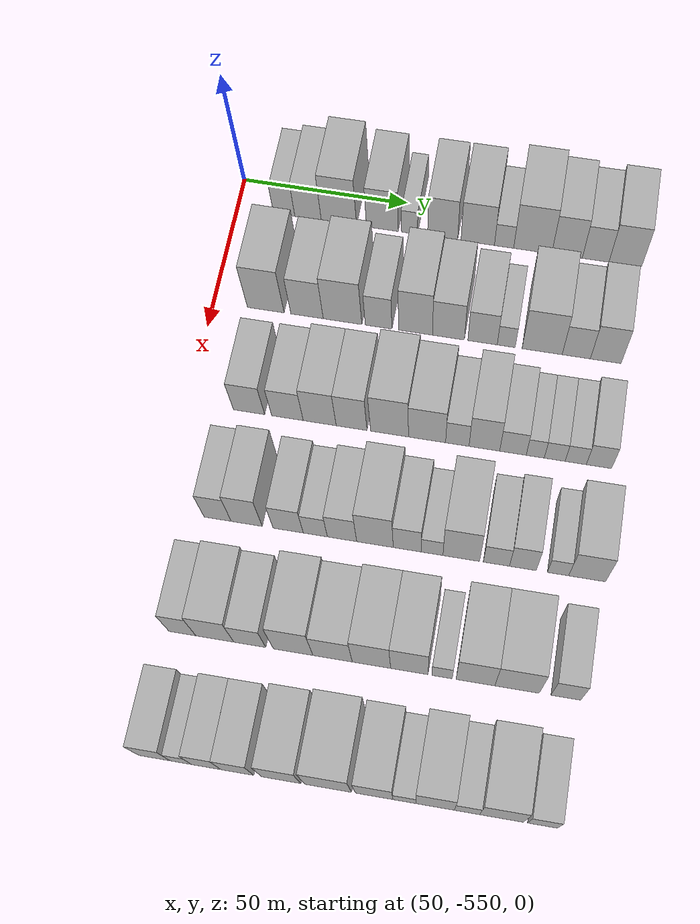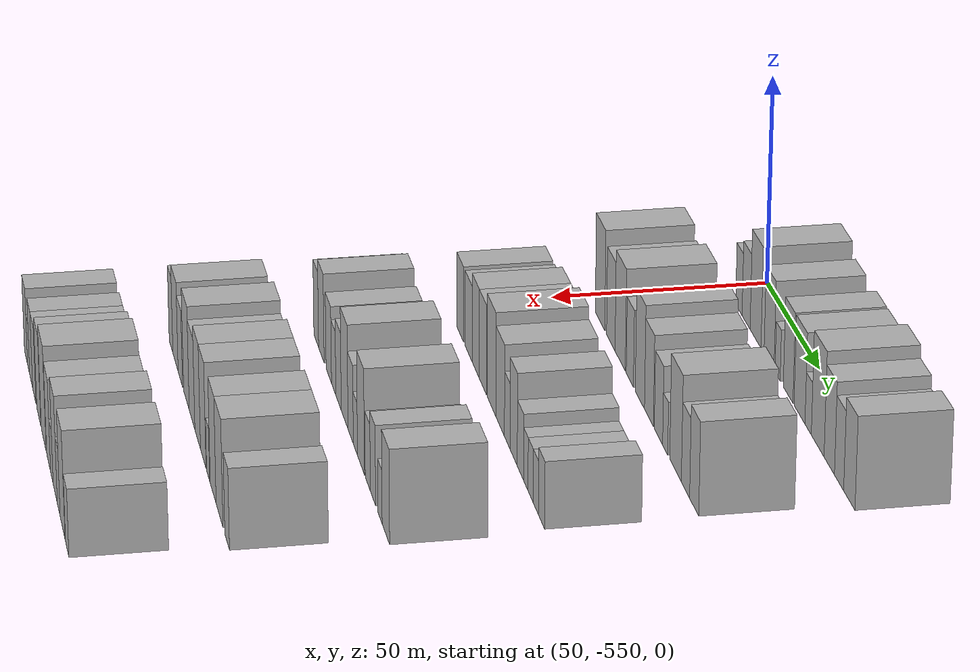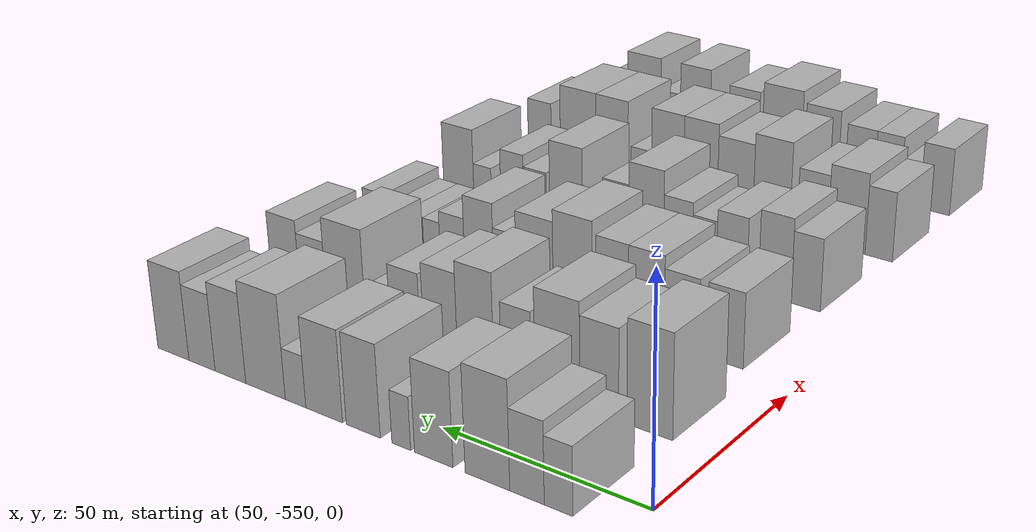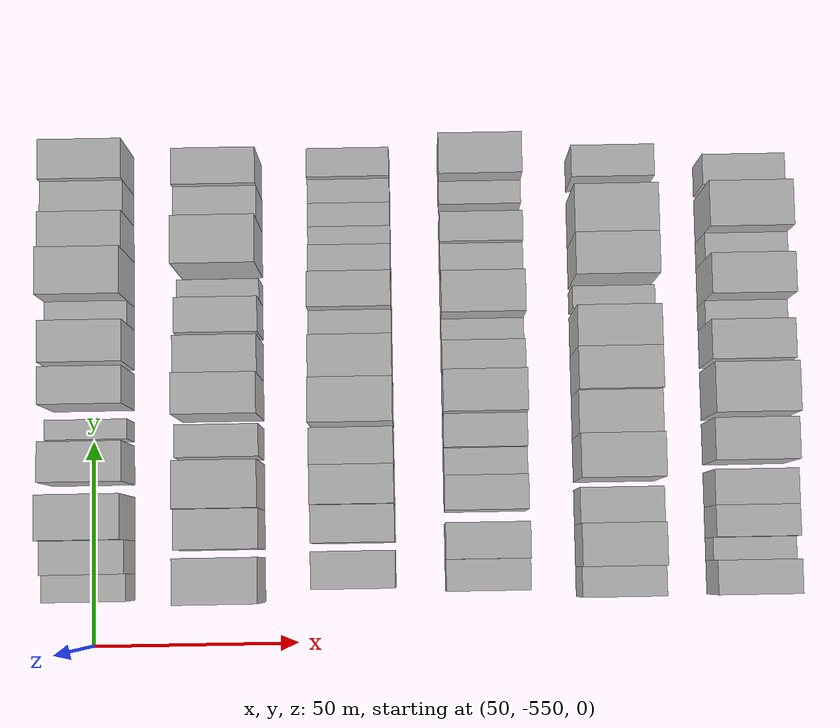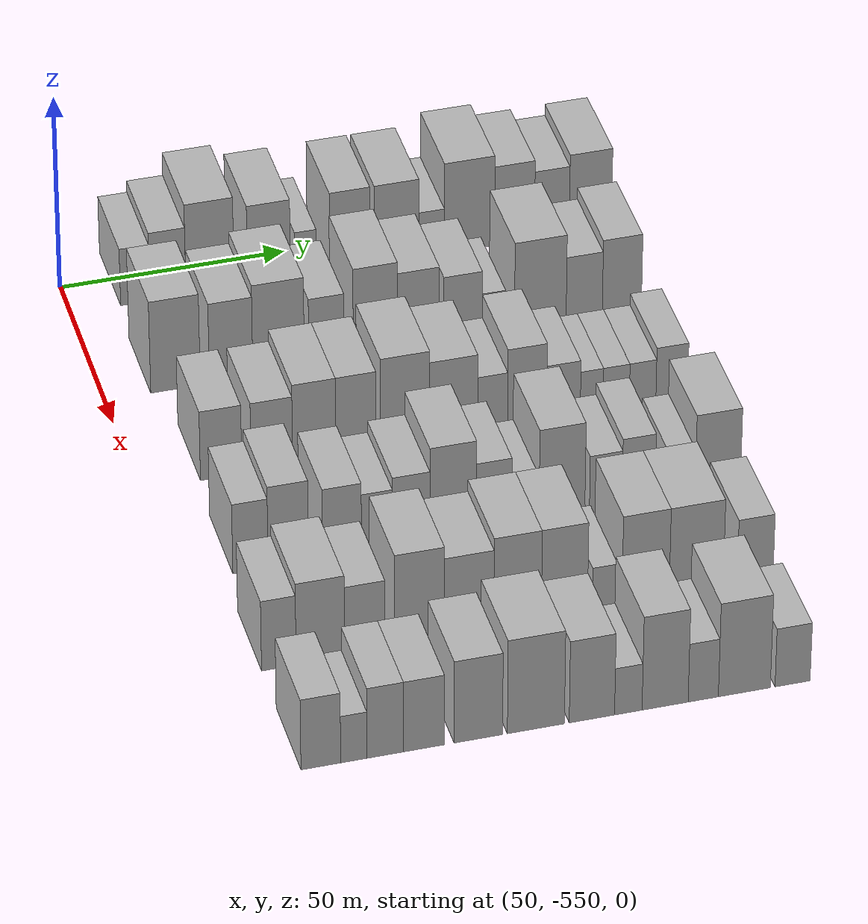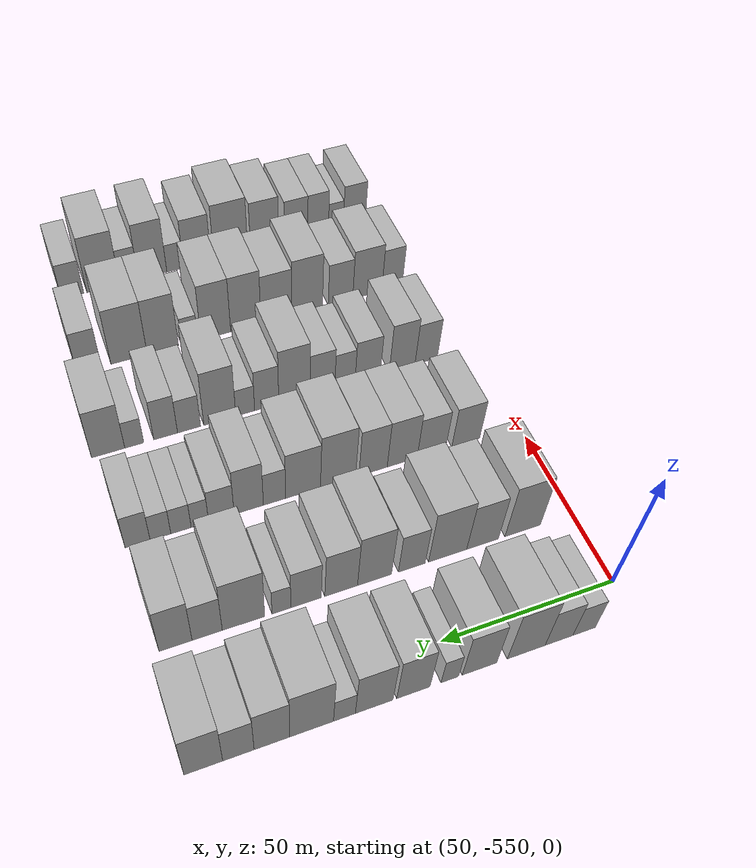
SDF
<sdf version="1.6">
 <world name="default">
  <model name="building_1">
   <static>1</static>
   <pose>50.0000 -535.7616 0 0.000000 0.000000 0.000000</pose>
   <link name="link">
    <pose>0 0 7.50 0 0 0</pose>
    <collision name="collision"><geometry><box><size>20.0000 6.4767 15.0000</size></box></geometry></collision>
    <visual name="visual">
     <cast_shadows>0</cast_shadows>
     <geometry><box><size>20.0000 6.4767 15.0000</size></box></geometry>
     <material>
      <script>
       <uri>model://HANNAS_wall/materials/scripts</uri>
       <uri>model://HANNAS_wall/materials/textures</uri>
       <name>vrc/HANNAS_wall</name>
      </script>
     </material>
    </visual>
   </link>
  </model>
  <model name="building_2">
   <static>1</static>
   <pose>50.0000 -528.5074 0 0.000000 0.000000 0.000000</pose>
   <link name="link">
    <pose>0 0 9.00 0 0 0</pose>
    <collision name="collision"><geometry><box><size>20.0000 8.0318 18.0000</size></box></geometry></collision>
    <visual name="visual">
     <cast_shadows>0</cast_shadows>
     <geometry><box><size>20.0000 8.0318 18.0000</size></box></geometry>
     <material>
      <script>
       <uri>model://HANNAS_wall/materials/scripts</uri>
       <uri>model://HANNAS_wall/materials/textures</uri>
       <name>vrc/HANNAS_wall</name>
      </script>
     </material>
    </visual>
   </link>
  </model>
  <model name="building_3">
   <static>1</static>
   <pose>50.0000 -519.1318 0 0.000000 0.000000 0.000000</pose>
   <link name="link">
    <pose>0 0 12.00 0 0 0</pose>
    <collision name="collision"><geometry><box><size>20.0000 10.7195 24.0000</size></box></geometry></collision>
    <visual name="visual">
     <cast_shadows>0</cast_shadows>
     <geometry><box><size>20.0000 10.7195 24.0000</size></box></geometry>
     <material>
      <script>
       <uri>model://HANNAS_wall/materials/scripts</uri>
       <uri>model://HANNAS_wall/materials/textures</uri>
       <name>vrc/HANNAS_wall</name>
      </script>
     </material>
    </visual>
   </link>
  </model>
  <model name="building_4">
   <static>1</static>
   <pose>50.0000 -505.9798 0 0.000000 0.000000 0.000000</pose>
   <link name="link">
    <pose>0 0 10.50 0 0 0</pose>
    <collision name="collision"><geometry><box><size>20.0000 9.5844 21.0000</size></box></geometry></collision>
    <visual name="visual">
     <cast_shadows>0</cast_shadows>
     <geometry><box><size>20.0000 9.5844 21.0000</size></box></geometry>
     <material>
      <script>
       <uri>model://HANNAS_wall/materials/scripts</uri>
       <uri>model://HANNAS_wall/materials/textures</uri>
       <name>vrc/HANNAS_wall</name>
      </script>
     </material>
    </visual>
   </link>
  </model>
  <model name="building_5">
   <static>1</static>
   <pose>50.0000 -497.7741 0 0.000000 0.000000 0.000000</pose>
   <link name="link">
    <pose>0 0 6.00 0 0 0</pose>
    <collision name="collision"><geometry><box><size>20.0000 4.8271 12.0000</size></box></geometry></collision>
    <visual name="visual">
     <cast_shadows>0</cast_shadows>
     <geometry><box><size>20.0000 4.8271 12.0000</size></box></geometry>
     <material>
      <script>
       <uri>model://HANNAS_wall/materials/scripts</uri>
       <uri>model://HANNAS_wall/materials/textures</uri>
       <name>vrc/HANNAS_wall</name>
      </script>
     </material>
    </visual>
   </link>
  </model>
  <model name="building_6">
   <static>1</static>
   <pose>50.0000 -487.8545 0 0.000000 0.000000 0.000000</pose>
   <link name="link">
    <pose>0 0 10.50 0 0 0</pose>
    <collision name="collision"><geometry><box><size>20.0000 9.0120 21.0000</size></box></geometry></collision>
    <visual name="visual">
     <cast_shadows>0</cast_shadows>
     <geometry><box><size>20.0000 9.0120 21.0000</size></box></geometry>
     <material>
      <script>
       <uri>model://HANNAS_wall/materials/scripts</uri>
       <uri>model://HANNAS_wall/materials/textures</uri>
       <name>vrc/HANNAS_wall</name>
      </script>
     </material>
    </visual>
   </link>
  </model>
  <model name="building_7">
   <static>1</static>
   <pose>50.0000 -477.3444 0 0.000000 0.000000 0.000000</pose>
   <link name="link">
    <pose>0 0 10.50 0 0 0</pose>
    <collision name="collision"><geometry><box><size>20.0000 10.0082 21.0000</size></box></geometry></collision>
    <visual name="visual">
     <cast_shadows>0</cast_shadows>
     <geometry><box><size>20.0000 10.0082 21.0000</size></box></geometry>
     <material>
      <script>
       <uri>model://HANNAS_wall/materials/scripts</uri>
       <uri>model://HANNAS_wall/materials/textures</uri>
       <name>vrc/HANNAS_wall</name>
      </script>
     </material>
    </visual>
   </link>
  </model>
  <model name="building_8">
   <static>1</static>
   <pose>50.0000 -469.4702 0 0.000000 0.000000 0.000000</pose>
   <link name="link">
    <pose>0 0 6.00 0 0 0</pose>
    <collision name="collision"><geometry><box><size>20.0000 5.7402 12.0000</size></box></geometry></collision>
    <visual name="visual">
     <cast_shadows>0</cast_shadows>
     <geometry><box><size>20.0000 5.7402 12.0000</size></box></geometry>
     <material>
      <script>
       <uri>model://HANNAS_wall/materials/scripts</uri>
       <uri>model://HANNAS_wall/materials/textures</uri>
       <name>vrc/HANNAS_wall</name>
      </script>
     </material>
    </visual>
   </link>
  </model>
  <model name="building_9">
   <static>1</static>
   <pose>50.0000 -460.9386 0 0.000000 0.000000 0.000000</pose>
   <link name="link">
    <pose>0 0 12.00 0 0 0</pose>
    <collision name="collision"><geometry><box><size>20.0000 11.3230 24.0000</size></box></geometry></collision>
    <visual name="visual">
     <cast_shadows>0</cast_shadows>
     <geometry><box><size>20.0000 11.3230 24.0000</size></box></geometry>
     <material>
      <script>
       <uri>model://HANNAS_wall/materials/scripts</uri>
       <uri>model://HANNAS_wall/materials/textures</uri>
       <name>vrc/HANNAS_wall</name>
      </script>
     </material>
    </visual>
   </link>
  </model>
  <model name="building_10">
   <static>1</static>
   <pose>50.0000 -450.7442 0 0.000000 0.000000 0.000000</pose>
   <link name="link">
    <pose>0 0 10.50 0 0 0</pose>
    <collision name="collision"><geometry><box><size>20.0000 9.0658 21.0000</size></box></geometry></collision>
    <visual name="visual">
     <cast_shadows>0</cast_shadows>
     <geometry><box><size>20.0000 9.0658 21.0000</size></box></geometry>
     <material>
      <script>
       <uri>model://HANNAS_wall/materials/scripts</uri>
       <uri>model://HANNAS_wall/materials/textures</uri>
       <name>vrc/HANNAS_wall</name>
      </script>
     </material>
    </visual>
   </link>
  </model>
  <model name="building_11">
   <static>1</static>
   <pose>50.0000 -442.2611 0 0.000000 0.000000 0.000000</pose>
   <link name="link">
    <pose>0 0 9.00 0 0 0</pose>
    <collision name="collision"><geometry><box><size>20.0000 7.9005 18.0000</size></box></geometry></collision>
    <visual name="visual">
     <cast_shadows>0</cast_shadows>
     <geometry><box><size>20.0000 7.9005 18.0000</size></box></geometry>
     <material>
      <script>
       <uri>model://HANNAS_wall/materials/scripts</uri>
       <uri>model://HANNAS_wall/materials/textures</uri>
       <name>vrc/HANNAS_wall</name>
      </script>
     </material>
    </visual>
   </link>
  </model>
  <model name="building_12">
   <static>1</static>
   <pose>50.0000 -433.5036 0 0.000000 0.000000 0.000000</pose>
   <link name="link">
    <pose>0 0 10.50 0 0 0</pose>
    <collision name="collision"><geometry><box><size>20.0000 9.6145 21.0000</size></box></geometry></collision>
    <visual name="visual">
     <cast_shadows>0</cast_shadows>
     <geometry><box><size>20.0000 9.6145 21.0000</size></box></geometry>
     <material>
      <script>
       <uri>model://HANNAS_wall/materials/scripts</uri>
       <uri>model://HANNAS_wall/materials/textures</uri>
       <name>vrc/HANNAS_wall</name>
      </script>
     </material>
    </visual>
   </link>
  </model>
  <model name="building_122">
   <static>1</static>
   <pose>82.0000 -534.5853 0 0.000000 0.000000 0.000000</pose>
   <link name="link">
    <pose>0 0 12.00 0 0 0</pose>
    <collision name="collision"><geometry><box><size>20.0000 10.8295 24.0000</size></box></geometry></collision>
    <visual name="visual">
     <cast_shadows>0</cast_shadows>
     <geometry><box><size>20.0000 10.8295 24.0000</size></box></geometry>
     <material>
      <script>
       <uri>model://HANNAS_wall/materials/scripts</uri>
       <uri>model://HANNAS_wall/materials/textures</uri>
       <name>vrc/HANNAS_wall</name>
      </script>
     </material>
    </visual>
   </link>
  </model>
  <model name="building_123">
   <static>1</static>
   <pose>82.0000 -522.4095 0 0.000000 0.000000 0.000000</pose>
   <link name="link">
    <pose>0 0 10.50 0 0 0</pose>
    <collision name="collision"><geometry><box><size>20.0000 9.5220 21.0000</size></box></geometry></collision>
    <visual name="visual">
     <cast_shadows>0</cast_shadows>
     <geometry><box><size>20.0000 9.5220 21.0000</size></box></geometry>
     <material>
      <script>
       <uri>model://HANNAS_wall/materials/scripts</uri>
       <uri>model://HANNAS_wall/materials/textures</uri>
       <name>vrc/HANNAS_wall</name>
      </script>
     </material>
    </visual>
   </link>
  </model>
  <model name="building_124">
   <static>1</static>
   <pose>82.0000 -511.9846 0 0.000000 0.000000 0.000000</pose>
   <link name="link">
    <pose>0 0 12.00 0 0 0</pose>
    <collision name="collision"><geometry><box><size>20.0000 11.3277 24.0000</size></box></geometry></collision>
    <visual name="visual">
     <cast_shadows>0</cast_shadows>
     <geometry><box><size>20.0000 11.3277 24.0000</size></box></geometry>
     <material>
      <script>
       <uri>model://HANNAS_wall/materials/scripts</uri>
       <uri>model://HANNAS_wall/materials/textures</uri>
       <name>vrc/HANNAS_wall</name>
      </script>
     </material>
    </visual>
   </link>
  </model>
  <model name="building_125">
   <static>1</static>
   <pose>82.0000 -501.4196 0 0.000000 0.000000 0.000000</pose>
   <link name="link">
    <pose>0 0 9.00 0 0 0</pose>
    <collision name="collision"><geometry><box><size>20.0000 7.8023 18.0000</size></box></geometry></collision>
    <visual name="visual">
     <cast_shadows>0</cast_shadows>
     <geometry><box><size>20.0000 7.8023 18.0000</size></box></geometry>
     <material>
      <script>
       <uri>model://HANNAS_wall/materials/scripts</uri>
       <uri>model://HANNAS_wall/materials/textures</uri>
       <name>vrc/HANNAS_wall</name>
      </script>
     </material>
    </visual>
   </link>
  </model>
  <model name="building_126">
   <static>1</static>
   <pose>82.0000 -490.6313 0 0.000000 0.000000 0.000000</pose>
   <link name="link">
    <pose>0 0 12.00 0 0 0</pose>
    <collision name="collision"><geometry><box><size>20.0000 9.7744 24.0000</size></box></geometry></collision>
    <visual name="visual">
     <cast_shadows>0</cast_shadows>
     <geometry><box><size>20.0000 9.7744 24.0000</size></box></geometry>
     <material>
      <script>
       <uri>model://HANNAS_wall/materials/scripts</uri>
       <uri>model://HANNAS_wall/materials/textures</uri>
       <name>vrc/HANNAS_wall</name>
      </script>
     </material>
    </visual>
   </link>
  </model>
  <model name="building_127">
   <static>1</static>
   <pose>82.0000 -481.1085 0 0.000000 0.000000 0.000000</pose>
   <link name="link">
    <pose>0 0 10.50 0 0 0</pose>
    <collision name="collision"><geometry><box><size>20.0000 9.2711 21.0000</size></box></geometry></collision>
    <visual name="visual">
     <cast_shadows>0</cast_shadows>
     <geometry><box><size>20.0000 9.2711 21.0000</size></box></geometry>
     <material>
      <script>
       <uri>model://HANNAS_wall/materials/scripts</uri>
       <uri>model://HANNAS_wall/materials/textures</uri>
       <name>vrc/HANNAS_wall</name>
      </script>
     </material>
    </visual>
   </link>
  </model>
  <model name="building_128">
   <static>1</static>
   <pose>82.0000 -471.2200 0 0.000000 0.000000 0.000000</pose>
   <link name="link">
    <pose>0 0 9.00 0 0 0</pose>
    <collision name="collision"><geometry><box><size>20.0000 8.5059 18.0000</size></box></geometry></collision>
    <visual name="visual">
     <cast_shadows>0</cast_shadows>
     <geometry><box><size>20.0000 8.5059 18.0000</size></box></geometry>
     <material>
      <script>
       <uri>model://HANNAS_wall/materials/scripts</uri>
       <uri>model://HANNAS_wall/materials/textures</uri>
       <name>vrc/HANNAS_wall</name>
      </script>
     </material>
    </visual>
   </link>
  </model>
  <model name="building_129">
   <static>1</static>
   <pose>82.0000 -464.3770 0 0.000000 0.000000 0.000000</pose>
   <link name="link">
    <pose>0 0 6.00 0 0 0</pose>
    <collision name="collision"><geometry><box><size>20.0000 5.1802 12.0000</size></box></geometry></collision>
    <visual name="visual">
     <cast_shadows>0</cast_shadows>
     <geometry><box><size>20.0000 5.1802 12.0000</size></box></geometry>
     <material>
      <script>
       <uri>model://HANNAS_wall/materials/scripts</uri>
       <uri>model://HANNAS_wall/materials/textures</uri>
       <name>vrc/HANNAS_wall</name>
      </script>
     </material>
    </visual>
   </link>
  </model>
  <model name="building_130">
   <static>1</static>
   <pose>82.0000 -454.0213 0 0.000000 0.000000 0.000000</pose>
   <link name="link">
    <pose>0 0 12.00 0 0 0</pose>
    <collision name="collision"><geometry><box><size>20.0000 11.5312 24.0000</size></box></geometry></collision>
    <visual name="visual">
     <cast_shadows>0</cast_shadows>
     <geometry><box><size>20.0000 11.5312 24.0000</size></box></geometry>
     <material>
      <script>
       <uri>model://HANNAS_wall/materials/scripts</uri>
       <uri>model://HANNAS_wall/materials/textures</uri>
       <name>vrc/HANNAS_wall</name>
      </script>
     </material>
    </visual>
   </link>
  </model>
  <model name="building_131">
   <static>1</static>
   <pose>82.0000 -444.2135 0 0.000000 0.000000 0.000000</pose>
   <link name="link">
    <pose>0 0 9.00 0 0 0</pose>
    <collision name="collision"><geometry><box><size>20.0000 8.0842 18.0000</size></box></geometry></collision>
    <visual name="visual">
     <cast_shadows>0</cast_shadows>
     <geometry><box><size>20.0000 8.0842 18.0000</size></box></geometry>
     <material>
      <script>
       <uri>model://HANNAS_wall/materials/scripts</uri>
       <uri>model://HANNAS_wall/materials/textures</uri>
       <name>vrc/HANNAS_wall</name>
      </script>
     </material>
    </visual>
   </link>
  </model>
  <model name="building_132">
   <static>1</static>
   <pose>82.0000 -435.7846 0 0.000000 0.000000 0.000000</pose>
   <link name="link">
    <pose>0 0 10.50 0 0 0</pose>
    <collision name="collision"><geometry><box><size>20.0000 8.7737 21.0000</size></box></geometry></collision>
    <visual name="visual">
     <cast_shadows>0</cast_shadows>
     <geometry><box><size>20.0000 8.7737 21.0000</size></box></geometry>
     <material>
      <script>
       <uri>model://HANNAS_wall/materials/scripts</uri>
       <uri>model://HANNAS_wall/materials/textures</uri>
       <name>vrc/HANNAS_wall</name>
      </script>
     </material>
    </visual>
   </link>
  </model>
  <model name="building_244">
   <static>1</static>
   <pose>114.0000 -532.5374 0 0.000000 0.000000 0.000000</pose>
   <link name="link">
    <pose>0 0 9.00 0 0 0</pose>
    <collision name="collision"><geometry><box><size>20.0000 8.9252 18.0000</size></box></geometry></collision>
    <visual name="visual">
     <cast_shadows>0</cast_shadows>
     <geometry><box><size>20.0000 8.9252 18.0000</size></box></geometry>
     <material>
      <script>
       <uri>model://HANNAS_wall/materials/scripts</uri>
       <uri>model://HANNAS_wall/materials/textures</uri>
       <name>vrc/HANNAS_wall</name>
      </script>
     </material>
    </visual>
   </link>
  </model>
  <model name="building_245">
   <static>1</static>
   <pose>114.0000 -521.5871 0 0.000000 0.000000 0.000000</pose>
   <link name="link">
    <pose>0 0 9.00 0 0 0</pose>
    <collision name="collision"><geometry><box><size>20.0000 8.9754 18.0000</size></box></geometry></collision>
    <visual name="visual">
     <cast_shadows>0</cast_shadows>
     <geometry><box><size>20.0000 8.9754 18.0000</size></box></geometry>
     <material>
      <script>
       <uri>model://HANNAS_wall/materials/scripts</uri>
       <uri>model://HANNAS_wall/materials/textures</uri>
       <name>vrc/HANNAS_wall</name>
      </script>
     </material>
    </visual>
   </link>
  </model>
  <model name="building_246">
   <static>1</static>
   <pose>114.0000 -512.4173 0 0.000000 0.000000 0.000000</pose>
   <link name="link">
    <pose>0 0 10.50 0 0 0</pose>
    <collision name="collision"><geometry><box><size>20.0000 9.3642 21.0000</size></box></geometry></collision>
    <visual name="visual">
     <cast_shadows>0</cast_shadows>
     <geometry><box><size>20.0000 9.3642 21.0000</size></box></geometry>
     <material>
      <script>
       <uri>model://HANNAS_wall/materials/scripts</uri>
       <uri>model://HANNAS_wall/materials/textures</uri>
       <name>vrc/HANNAS_wall</name>
      </script>
     </material>
    </visual>
   </link>
  </model>
  <model name="building_247">
   <static>1</static>
   <pose>114.0000 -503.3660 0 0.000000 0.000000 0.000000</pose>
   <link name="link">
    <pose>0 0 10.50 0 0 0</pose>
    <collision name="collision"><geometry><box><size>20.0000 8.7384 21.0000</size></box></geometry></collision>
    <visual name="visual">
     <cast_shadows>0</cast_shadows>
     <geometry><box><size>20.0000 8.7384 21.0000</size></box></geometry>
     <material>
      <script>
       <uri>model://HANNAS_wall/materials/scripts</uri>
       <uri>model://HANNAS_wall/materials/textures</uri>
       <name>vrc/HANNAS_wall</name>
      </script>
     </material>
    </visual>
   </link>
  </model>
  <model name="building_248">
   <static>1</static>
   <pose>114.0000 -492.6556 0 0.000000 0.000000 0.000000</pose>
   <link name="link">
    <pose>0 0 12.00 0 0 0</pose>
    <collision name="collision"><geometry><box><size>20.0000 10.6823 24.0000</size></box></geometry></collision>
    <visual name="visual">
     <cast_shadows>0</cast_shadows>
     <geometry><box><size>20.0000 10.6823 24.0000</size></box></geometry>
     <material>
      <script>
       <uri>model://HANNAS_wall/materials/scripts</uri>
       <uri>model://HANNAS_wall/materials/textures</uri>
       <name>vrc/HANNAS_wall</name>
      </script>
     </material>
    </visual>
   </link>
  </model>
  <model name="building_249">
   <static>1</static>
   <pose>114.0000 -482.0952 0 0.000000 0.000000 0.000000</pose>
   <link name="link">
    <pose>0 0 10.50 0 0 0</pose>
    <collision name="collision"><geometry><box><size>20.0000 10.4384 21.0000</size></box></geometry></collision>
    <visual name="visual">
     <cast_shadows>0</cast_shadows>
     <geometry><box><size>20.0000 10.4384 21.0000</size></box></geometry>
     <material>
      <script>
       <uri>model://HANNAS_wall/materials/scripts</uri>
       <uri>model://HANNAS_wall/materials/textures</uri>
       <name>vrc/HANNAS_wall</name>
      </script>
     </material>
    </visual>
   </link>
  </model>
  <model name="building_250">
   <static>1</static>
   <pose>114.0000 -473.5950 0 0.000000 0.000000 0.000000</pose>
   <link name="link">
    <pose>0 0 7.50 0 0 0</pose>
    <collision name="collision"><geometry><box><size>20.0000 6.5620 15.0000</size></box></geometry></collision>
    <visual name="visual">
     <cast_shadows>0</cast_shadows>
     <geometry><box><size>20.0000 6.5620 15.0000</size></box></geometry>
     <material>
      <script>
       <uri>model://HANNAS_wall/materials/scripts</uri>
       <uri>model://HANNAS_wall/materials/textures</uri>
       <name>vrc/HANNAS_wall</name>
      </script>
     </material>
    </visual>
   </link>
  </model>
  <model name="building_251">
   <static>1</static>
   <pose>114.0000 -466.0283 0 0.000000 0.000000 0.000000</pose>
   <link name="link">
    <pose>0 0 10.50 0 0 0</pose>
    <collision name="collision"><geometry><box><size>20.0000 8.5715 21.0000</size></box></geometry></collision>
    <visual name="visual">
     <cast_shadows>0</cast_shadows>
     <geometry><box><size>20.0000 8.5715 21.0000</size></box></geometry>
     <material>
      <script>
       <uri>model://HANNAS_wall/materials/scripts</uri>
       <uri>model://HANNAS_wall/materials/textures</uri>
       <name>vrc/HANNAS_wall</name>
      </script>
     </material>
    </visual>
   </link>
  </model>
  <model name="building_252">
   <static>1</static>
   <pose>114.0000 -458.0474 0 0.000000 0.000000 0.000000</pose>
   <link name="link">
    <pose>0 0 7.50 0 0 0</pose>
    <collision name="collision"><geometry><box><size>20.0000 7.3904 15.0000</size></box></geometry></collision>
    <visual name="visual">
     <cast_shadows>0</cast_shadows>
     <geometry><box><size>20.0000 7.3904 15.0000</size></box></geometry>
     <material>
      <script>
       <uri>model://HANNAS_wall/materials/scripts</uri>
       <uri>model://HANNAS_wall/materials/textures</uri>
       <name>vrc/HANNAS_wall</name>
      </script>
     </material>
    </visual>
   </link>
  </model>
  <model name="building_253">
   <static>1</static>
   <pose>114.0000 -451.8449 0 0.000000 0.000000 0.000000</pose>
   <link name="link">
    <pose>0 0 6.00 0 0 0</pose>
    <collision name="collision"><geometry><box><size>20.0000 5.0148 12.0000</size></box></geometry></collision>
    <visual name="visual">
     <cast_shadows>0</cast_shadows>
     <geometry><box><size>20.0000 5.0148 12.0000</size></box></geometry>
     <material>
      <script>
       <uri>model://HANNAS_wall/materials/scripts</uri>
       <uri>model://HANNAS_wall/materials/textures</uri>
       <name>vrc/HANNAS_wall</name>
      </script>
     </material>
    </visual>
   </link>
  </model>
  <model name="building_254">
   <static>1</static>
   <pose>114.0000 -446.4474 0 0.000000 0.000000 0.000000</pose>
   <link name="link">
    <pose>0 0 6.00 0 0 0</pose>
    <collision name="collision"><geometry><box><size>20.0000 5.7802 12.0000</size></box></geometry></collision>
    <visual name="visual">
     <cast_shadows>0</cast_shadows>
     <geometry><box><size>20.0000 5.7802 12.0000</size></box></geometry>
     <material>
      <script>
       <uri>model://HANNAS_wall/materials/scripts</uri>
       <uri>model://HANNAS_wall/materials/textures</uri>
       <name>vrc/HANNAS_wall</name>
      </script>
     </material>
    </visual>
   </link>
  </model>
  <model name="building_255">
   <static>1</static>
   <pose>114.0000 -440.6217 0 0.000000 0.000000 0.000000</pose>
   <link name="link">
    <pose>0 0 6.00 0 0 0</pose>
    <collision name="collision"><geometry><box><size>20.0000 5.8711 12.0000</size></box></geometry></collision>
    <visual name="visual">
     <cast_shadows>0</cast_shadows>
     <geometry><box><size>20.0000 5.8711 12.0000</size></box></geometry>
     <material>
      <script>
       <uri>model://HANNAS_wall/materials/scripts</uri>
       <uri>model://HANNAS_wall/materials/textures</uri>
       <name>vrc/HANNAS_wall</name>
      </script>
     </material>
    </visual>
   </link>
  </model>
  <model name="building_256">
   <static>1</static>
   <pose>114.0000 -434.1788 0 0.000000 0.000000 0.000000</pose>
   <link name="link">
    <pose>0 0 7.50 0 0 0</pose>
    <collision name="collision"><geometry><box><size>20.0000 7.0148 15.0000</size></box></geometry></collision>
    <visual name="visual">
     <cast_shadows>0</cast_shadows>
     <geometry><box><size>20.0000 7.0148 15.0000</size></box></geometry>
     <material>
      <script>
       <uri>model://HANNAS_wall/materials/scripts</uri>
       <uri>model://HANNAS_wall/materials/textures</uri>
       <name>vrc/HANNAS_wall</name>
      </script>
     </material>
    </visual>
   </link>
  </model>
  <model name="building_364">
   <static>1</static>
   <pose>146.0000 -534.2531 0 0.000000 0.000000 0.000000</pose>
   <link name="link">
    <pose>0 0 9.00 0 0 0</pose>
    <collision name="collision"><geometry><box><size>20.0000 7.4938 18.0000</size></box></geometry></collision>
    <visual name="visual">
     <cast_shadows>0</cast_shadows>
     <geometry><box><size>20.0000 7.4938 18.0000</size></box></geometry>
     <material>
      <script>
       <uri>model://HANNAS_wall/materials/scripts</uri>
       <uri>model://HANNAS_wall/materials/textures</uri>
       <name>vrc/HANNAS_wall</name>
      </script>
     </material>
    </visual>
   </link>
  </model>
  <model name="building_365">
   <static>1</static>
   <pose>146.0000 -526.2146 0 0.000000 0.000000 0.000000</pose>
   <link name="link">
    <pose>0 0 10.50 0 0 0</pose>
    <collision name="collision"><geometry><box><size>20.0000 8.5830 21.0000</size></box></geometry></collision>
    <visual name="visual">
     <cast_shadows>0</cast_shadows>
     <geometry><box><size>20.0000 8.5830 21.0000</size></box></geometry>
     <material>
      <script>
       <uri>model://HANNAS_wall/materials/scripts</uri>
       <uri>model://HANNAS_wall/materials/textures</uri>
       <name>vrc/HANNAS_wall</name>
      </script>
     </material>
    </visual>
   </link>
  </model>
  <model name="building_366">
   <static>1</static>
   <pose>146.0000 -514.7753 0 0.000000 0.000000 0.000000</pose>
   <link name="link">
    <pose>0 0 9.00 0 0 0</pose>
    <collision name="collision"><geometry><box><size>20.0000 8.2956 18.0000</size></box></geometry></collision>
    <visual name="visual">
     <cast_shadows>0</cast_shadows>
     <geometry><box><size>20.0000 8.2956 18.0000</size></box></geometry>
     <material>
      <script>
       <uri>model://HANNAS_wall/materials/scripts</uri>
       <uri>model://HANNAS_wall/materials/textures</uri>
       <name>vrc/HANNAS_wall</name>
      </script>
     </material>
    </visual>
   </link>
  </model>
  <model name="building_367">
   <static>1</static>
   <pose>146.0000 -507.3210 0 0.000000 0.000000 0.000000</pose>
   <link name="link">
    <pose>0 0 7.50 0 0 0</pose>
    <collision name="collision"><geometry><box><size>20.0000 6.6129 15.0000</size></box></geometry></collision>
    <visual name="visual">
     <cast_shadows>0</cast_shadows>
     <geometry><box><size>20.0000 6.6129 15.0000</size></box></geometry>
     <material>
      <script>
       <uri>model://HANNAS_wall/materials/scripts</uri>
       <uri>model://HANNAS_wall/materials/textures</uri>
       <name>vrc/HANNAS_wall</name>
      </script>
     </material>
    </visual>
   </link>
  </model>
  <model name="building_368">
   <static>1</static>
   <pose>146.0000 -500.0067 0 0.000000 0.000000 0.000000</pose>
   <link name="link">
    <pose>0 0 9.00 0 0 0</pose>
    <collision name="collision"><geometry><box><size>20.0000 8.0157 18.0000</size></box></geometry></collision>
    <visual name="visual">
     <cast_shadows>0</cast_shadows>
     <geometry><box><size>20.0000 8.0157 18.0000</size></box></geometry>
     <material>
      <script>
       <uri>model://HANNAS_wall/materials/scripts</uri>
       <uri>model://HANNAS_wall/materials/textures</uri>
       <name>vrc/HANNAS_wall</name>
      </script>
     </material>
    </visual>
   </link>
  </model>
  <model name="building_369">
   <static>1</static>
   <pose>146.0000 -491.0179 0 0.000000 0.000000 0.000000</pose>
   <link name="link">
    <pose>0 0 12.00 0 0 0</pose>
    <collision name="collision"><geometry><box><size>20.0000 9.9620 24.0000</size></box></geometry></collision>
    <visual name="visual">
     <cast_shadows>0</cast_shadows>
     <geometry><box><size>20.0000 9.9620 24.0000</size></box></geometry>
     <material>
      <script>
       <uri>model://HANNAS_wall/materials/scripts</uri>
       <uri>model://HANNAS_wall/materials/textures</uri>
       <name>vrc/HANNAS_wall</name>
      </script>
     </material>
    </visual>
   </link>
  </model>
  <model name="building_370">
   <static>1</static>
   <pose>146.0000 -482.2350 0 0.000000 0.000000 0.000000</pose>
   <link name="link">
    <pose>0 0 9.00 0 0 0</pose>
    <collision name="collision"><geometry><box><size>20.0000 7.6039 18.0000</size></box></geometry></collision>
    <visual name="visual">
     <cast_shadows>0</cast_shadows>
     <geometry><box><size>20.0000 7.6039 18.0000</size></box></geometry>
     <material>
      <script>
       <uri>model://HANNAS_wall/materials/scripts</uri>
       <uri>model://HANNAS_wall/materials/textures</uri>
       <name>vrc/HANNAS_wall</name>
      </script>
     </material>
    </visual>
   </link>
  </model>
  <model name="building_371">
   <static>1</static>
   <pose>146.0000 -475.4896 0 0.000000 0.000000 0.000000</pose>
   <link name="link">
    <pose>0 0 6.00 0 0 0</pose>
    <collision name="collision"><geometry><box><size>20.0000 5.8870 12.0000</size></box></geometry></collision>
    <visual name="visual">
     <cast_shadows>0</cast_shadows>
     <geometry><box><size>20.0000 5.8870 12.0000</size></box></geometry>
     <material>
      <script>
       <uri>model://HANNAS_wall/materials/scripts</uri>
       <uri>model://HANNAS_wall/materials/textures</uri>
       <name>vrc/HANNAS_wall</name>
      </script>
     </material>
    </visual>
   </link>
  </model>
  <model name="building_372">
   <static>1</static>
   <pose>146.0000 -467.5953 0 0.000000 0.000000 0.000000</pose>
   <link name="link">
    <pose>0 0 12.00 0 0 0</pose>
    <collision name="collision"><geometry><box><size>20.0000 9.9016 24.0000</size></box></geometry></collision>
    <visual name="visual">
     <cast_shadows>0</cast_shadows>
     <geometry><box><size>20.0000 9.9016 24.0000</size></box></geometry>
     <material>
      <script>
       <uri>model://HANNAS_wall/materials/scripts</uri>
       <uri>model://HANNAS_wall/materials/textures</uri>
       <name>vrc/HANNAS_wall</name>
      </script>
     </material>
    </visual>
   </link>
  </model>
  <model name="building_373">
   <static>1</static>
   <pose>146.0000 -458.1217 0 0.000000 0.000000 0.000000</pose>
   <link name="link">
    <pose>0 0 7.50 0 0 0</pose>
    <collision name="collision"><geometry><box><size>20.0000 7.0456 15.0000</size></box></geometry></collision>
    <visual name="visual">
     <cast_shadows>0</cast_shadows>
     <geometry><box><size>20.0000 7.0456 15.0000</size></box></geometry>
     <material>
      <script>
       <uri>model://HANNAS_wall/materials/scripts</uri>
       <uri>model://HANNAS_wall/materials/textures</uri>
       <name>vrc/HANNAS_wall</name>
      </script>
     </material>
    </visual>
   </link>
  </model>
  <model name="building_374">
   <static>1</static>
   <pose>146.0000 -450.9936 0 0.000000 0.000000 0.000000</pose>
   <link name="link">
    <pose>0 0 9.00 0 0 0</pose>
    <collision name="collision"><geometry><box><size>20.0000 7.2107 18.0000</size></box></geometry></collision>
    <visual name="visual">
     <cast_shadows>0</cast_shadows>
     <geometry><box><size>20.0000 7.2107 18.0000</size></box></geometry>
     <material>
      <script>
       <uri>model://HANNAS_wall/materials/scripts</uri>
       <uri>model://HANNAS_wall/materials/textures</uri>
       <name>vrc/HANNAS_wall</name>
      </script>
     </material>
    </visual>
   </link>
  </model>
  <model name="building_375">
   <static>1</static>
   <pose>146.0000 -441.5499 0 0.000000 0.000000 0.000000</pose>
   <link name="link">
    <pose>0 0 6.00 0 0 0</pose>
    <collision name="collision"><geometry><box><size>20.0000 5.6768 12.0000</size></box></geometry></collision>
    <visual name="visual">
     <cast_shadows>0</cast_shadows>
     <geometry><box><size>20.0000 5.6768 12.0000</size></box></geometry>
     <material>
      <script>
       <uri>model://HANNAS_wall/materials/scripts</uri>
       <uri>model://HANNAS_wall/materials/textures</uri>
       <name>vrc/HANNAS_wall</name>
      </script>
     </material>
    </visual>
   </link>
  </model>
  <model name="building_376">
   <static>1</static>
   <pose>146.0000 -433.7812 0 0.000000 0.000000 0.000000</pose>
   <link name="link">
    <pose>0 0 10.50 0 0 0</pose>
    <collision name="collision"><geometry><box><size>20.0000 9.8606 21.0000</size></box></geometry></collision>
    <visual name="visual">
     <cast_shadows>0</cast_shadows>
     <geometry><box><size>20.0000 9.8606 21.0000</size></box></geometry>
     <material>
      <script>
       <uri>model://HANNAS_wall/materials/scripts</uri>
       <uri>model://HANNAS_wall/materials/textures</uri>
       <name>vrc/HANNAS_wall</name>
      </script>
     </material>
    </visual>
   </link>
  </model>
  <model name="building_484">
   <static>1</static>
   <pose>178.0000 -536.3870 0 0.000000 0.000000 0.000000</pose>
   <link name="link">
    <pose>0 0 9.00 0 0 0</pose>
    <collision name="collision"><geometry><box><size>20.0000 7.2260 18.0000</size></box></geometry></collision>
    <visual name="visual">
     <cast_shadows>0</cast_shadows>
     <geometry><box><size>20.0000 7.2260 18.0000</size></box></geometry>
     <material>
      <script>
       <uri>model://HANNAS_wall/materials/scripts</uri>
       <uri>model://HANNAS_wall/materials/textures</uri>
       <name>vrc/HANNAS_wall</name>
      </script>
     </material>
    </visual>
   </link>
  </model>
  <model name="building_485">
   <static>1</static>
   <pose>178.0000 -527.6909 0 0.000000 0.000000 0.000000</pose>
   <link name="link">
    <pose>0 0 10.50 0 0 0</pose>
    <collision name="collision"><geometry><box><size>20.0000 10.1662 21.0000</size></box></geometry></collision>
    <visual name="visual">
     <cast_shadows>0</cast_shadows>
     <geometry><box><size>20.0000 10.1662 21.0000</size></box></geometry>
     <material>
      <script>
       <uri>model://HANNAS_wall/materials/scripts</uri>
       <uri>model://HANNAS_wall/materials/textures</uri>
       <name>vrc/HANNAS_wall</name>
      </script>
     </material>
    </visual>
   </link>
  </model>
  <model name="building_486">
   <static>1</static>
   <pose>178.0000 -518.3637 0 0.000000 0.000000 0.000000</pose>
   <link name="link">
    <pose>0 0 9.00 0 0 0</pose>
    <collision name="collision"><geometry><box><size>20.0000 8.4882 18.0000</size></box></geometry></collision>
    <visual name="visual">
     <cast_shadows>0</cast_shadows>
     <geometry><box><size>20.0000 8.4882 18.0000</size></box></geometry>
     <material>
      <script>
       <uri>model://HANNAS_wall/materials/scripts</uri>
       <uri>model://HANNAS_wall/materials/textures</uri>
       <name>vrc/HANNAS_wall</name>
      </script>
     </material>
    </visual>
   </link>
  </model>
  <model name="building_487">
   <static>1</static>
   <pose>178.0000 -506.8758 0 0.000000 0.000000 0.000000</pose>
   <link name="link">
    <pose>0 0 12.00 0 0 0</pose>
    <collision name="collision"><geometry><box><size>20.0000 10.4874 24.0000</size></box></geometry></collision>
    <visual name="visual">
     <cast_shadows>0</cast_shadows>
     <geometry><box><size>20.0000 10.4874 24.0000</size></box></geometry>
     <material>
      <script>
       <uri>model://HANNAS_wall/materials/scripts</uri>
       <uri>model://HANNAS_wall/materials/textures</uri>
       <name>vrc/HANNAS_wall</name>
      </script>
     </material>
    </visual>
   </link>
  </model>
  <model name="building_488">
   <static>1</static>
   <pose>178.0000 -496.4383 0 0.000000 0.000000 0.000000</pose>
   <link name="link">
    <pose>0 0 10.50 0 0 0</pose>
    <collision name="collision"><geometry><box><size>20.0000 10.3878 21.0000</size></box></geometry></collision>
    <visual name="visual">
     <cast_shadows>0</cast_shadows>
     <geometry><box><size>20.0000 10.3878 21.0000</size></box></geometry>
     <material>
      <script>
       <uri>model://HANNAS_wall/materials/scripts</uri>
       <uri>model://HANNAS_wall/materials/textures</uri>
       <name>vrc/HANNAS_wall</name>
      </script>
     </material>
    </visual>
   </link>
  </model>
  <model name="building_489">
   <static>1</static>
   <pose>178.0000 -486.2055 0 0.000000 0.000000 0.000000</pose>
   <link name="link">
    <pose>0 0 12.00 0 0 0</pose>
    <collision name="collision"><geometry><box><size>20.0000 10.0777 24.0000</size></box></geometry></collision>
    <visual name="visual">
     <cast_shadows>0</cast_shadows>
     <geometry><box><size>20.0000 10.0777 24.0000</size></box></geometry>
     <material>
      <script>
       <uri>model://HANNAS_wall/materials/scripts</uri>
       <uri>model://HANNAS_wall/materials/textures</uri>
       <name>vrc/HANNAS_wall</name>
      </script>
     </material>
    </visual>
   </link>
  </model>
  <model name="building_490">
   <static>1</static>
   <pose>178.0000 -476.2759 0 0.000000 0.000000 0.000000</pose>
   <link name="link">
    <pose>0 0 12.00 0 0 0</pose>
    <collision name="collision"><geometry><box><size>20.0000 9.7816 24.0000</size></box></geometry></collision>
    <visual name="visual">
     <cast_shadows>0</cast_shadows>
     <geometry><box><size>20.0000 9.7816 24.0000</size></box></geometry>
     <material>
      <script>
       <uri>model://HANNAS_wall/materials/scripts</uri>
       <uri>model://HANNAS_wall/materials/textures</uri>
       <name>vrc/HANNAS_wall</name>
      </script>
     </material>
    </visual>
   </link>
  </model>
  <model name="building_491">
   <static>1</static>
   <pose>178.0000 -467.7236 0 0.000000 0.000000 0.000000</pose>
   <link name="link">
    <pose>0 0 6.00 0 0 0</pose>
    <collision name="collision"><geometry><box><size>20.0000 5.3231 12.0000</size></box></geometry></collision>
    <visual name="visual">
     <cast_shadows>0</cast_shadows>
     <geometry><box><size>20.0000 5.3231 12.0000</size></box></geometry>
     <material>
      <script>
       <uri>model://HANNAS_wall/materials/scripts</uri>
       <uri>model://HANNAS_wall/materials/textures</uri>
       <name>vrc/HANNAS_wall</name>
      </script>
     </material>
    </visual>
   </link>
  </model>
  <model name="building_492">
   <static>1</static>
   <pose>178.0000 -459.0211 0 0.000000 0.000000 0.000000</pose>
   <link name="link">
    <pose>0 0 12.00 0 0 0</pose>
    <collision name="collision"><geometry><box><size>20.0000 10.0818 24.0000</size></box></geometry></collision>
    <visual name="visual">
     <cast_shadows>0</cast_shadows>
     <geometry><box><size>20.0000 10.0818 24.0000</size></box></geometry>
     <material>
      <script>
       <uri>model://HANNAS_wall/materials/scripts</uri>
       <uri>model://HANNAS_wall/materials/textures</uri>
       <name>vrc/HANNAS_wall</name>
      </script>
     </material>
    </visual>
   </link>
  </model>
  <model name="building_493">
   <static>1</static>
   <pose>178.0000 -448.2059 0 0.000000 0.000000 0.000000</pose>
   <link name="link">
    <pose>0 0 12.00 0 0 0</pose>
    <collision name="collision"><geometry><box><size>20.0000 11.5486 24.0000</size></box></geometry></collision>
    <visual name="visual">
     <cast_shadows>0</cast_shadows>
     <geometry><box><size>20.0000 11.5486 24.0000</size></box></geometry>
     <material>
      <script>
       <uri>model://HANNAS_wall/materials/scripts</uri>
       <uri>model://HANNAS_wall/materials/textures</uri>
       <name>vrc/HANNAS_wall</name>
      </script>
     </material>
    </visual>
   </link>
  </model>
  <model name="building_494">
   <static>1</static>
   <pose>178.0000 -435.5807 0 0.000000 0.000000 0.000000</pose>
   <link name="link">
    <pose>0 0 9.00 0 0 0</pose>
    <collision name="collision"><geometry><box><size>20.0000 7.7020 18.0000</size></box></geometry></collision>
    <visual name="visual">
     <cast_shadows>0</cast_shadows>
     <geometry><box><size>20.0000 7.7020 18.0000</size></box></geometry>
     <material>
      <script>
       <uri>model://HANNAS_wall/materials/scripts</uri>
       <uri>model://HANNAS_wall/materials/textures</uri>
       <name>vrc/HANNAS_wall</name>
      </script>
     </material>
    </visual>
   </link>
  </model>
  <model name="building_597">
   <static>1</static>
   <pose>210.0000 -535.9169 0 0.000000 0.000000 0.000000</pose>
   <link name="link">
    <pose>0 0 9.00 0 0 0</pose>
    <collision name="collision"><geometry><box><size>20.0000 8.1662 18.0000</size></box></geometry></collision>
    <visual name="visual">
     <cast_shadows>0</cast_shadows>
     <geometry><box><size>20.0000 8.1662 18.0000</size></box></geometry>
     <material>
      <script>
       <uri>model://HANNAS_wall/materials/scripts</uri>
       <uri>model://HANNAS_wall/materials/textures</uri>
       <name>vrc/HANNAS_wall</name>
      </script>
     </material>
    </visual>
   </link>
  </model>
  <model name="building_598">
   <static>1</static>
   <pose>210.0000 -529.1119 0 0.000000 0.000000 0.000000</pose>
   <link name="link">
    <pose>0 0 6.00 0 0 0</pose>
    <collision name="collision"><geometry><box><size>20.0000 5.4438 12.0000</size></box></geometry></collision>
    <visual name="visual">
     <cast_shadows>0</cast_shadows>
     <geometry><box><size>20.0000 5.4438 12.0000</size></box></geometry>
     <material>
      <script>
       <uri>model://HANNAS_wall/materials/scripts</uri>
       <uri>model://HANNAS_wall/materials/textures</uri>
       <name>vrc/HANNAS_wall</name>
      </script>
     </material>
    </visual>
   </link>
  </model>
  <model name="building_599">
   <static>1</static>
   <pose>210.0000 -522.6216 0 0.000000 0.000000 0.000000</pose>
   <link name="link">
    <pose>0 0 9.00 0 0 0</pose>
    <collision name="collision"><geometry><box><size>20.0000 7.5368 18.0000</size></box></geometry></collision>
    <visual name="visual">
     <cast_shadows>0</cast_shadows>
     <geometry><box><size>20.0000 7.5368 18.0000</size></box></geometry>
     <material>
      <script>
       <uri>model://HANNAS_wall/materials/scripts</uri>
       <uri>model://HANNAS_wall/materials/textures</uri>
       <name>vrc/HANNAS_wall</name>
      </script>
     </material>
    </visual>
   </link>
  </model>
  <model name="building_600">
   <static>1</static>
   <pose>210.0000 -514.6288 0 0.000000 0.000000 0.000000</pose>
   <link name="link">
    <pose>0 0 9.00 0 0 0</pose>
    <collision name="collision"><geometry><box><size>20.0000 8.4487 18.0000</size></box></geometry></collision>
    <visual name="visual">
     <cast_shadows>0</cast_shadows>
     <geometry><box><size>20.0000 8.4487 18.0000</size></box></geometry>
     <material>
      <script>
       <uri>model://HANNAS_wall/materials/scripts</uri>
       <uri>model://HANNAS_wall/materials/textures</uri>
       <name>vrc/HANNAS_wall</name>
      </script>
     </material>
    </visual>
   </link>
  </model>
  <model name="building_601">
   <static>1</static>
   <pose>210.0000 -503.3749 0 0.000000 0.000000 0.000000</pose>
   <link name="link">
    <pose>0 0 10.50 0 0 0</pose>
    <collision name="collision"><geometry><box><size>20.0000 10.0590 21.0000</size></box></geometry></collision>
    <visual name="visual">
     <cast_shadows>0</cast_shadows>
     <geometry><box><size>20.0000 10.0590 21.0000</size></box></geometry>
     <material>
      <script>
       <uri>model://HANNAS_wall/materials/scripts</uri>
       <uri>model://HANNAS_wall/materials/textures</uri>
       <name>vrc/HANNAS_wall</name>
      </script>
     </material>
    </visual>
   </link>
  </model>
  <model name="building_602">
   <static>1</static>
   <pose>210.0000 -491.4032 0 0.000000 0.000000 0.000000</pose>
   <link name="link">
    <pose>0 0 12.00 0 0 0</pose>
    <collision name="collision"><geometry><box><size>20.0000 11.8845 24.0000</size></box></geometry></collision>
    <visual name="visual">
     <cast_shadows>0</cast_shadows>
     <geometry><box><size>20.0000 11.8845 24.0000</size></box></geometry>
     <material>
      <script>
       <uri>model://HANNAS_wall/materials/scripts</uri>
       <uri>model://HANNAS_wall/materials/textures</uri>
       <name>vrc/HANNAS_wall</name>
      </script>
     </material>
    </visual>
   </link>
  </model>
  <model name="building_603">
   <static>1</static>
   <pose>210.0000 -479.7237 0 0.000000 0.000000 0.000000</pose>
   <link name="link">
    <pose>0 0 10.50 0 0 0</pose>
    <collision name="collision"><geometry><box><size>20.0000 9.4745 21.0000</size></box></geometry></collision>
    <visual name="visual">
     <cast_shadows>0</cast_shadows>
     <geometry><box><size>20.0000 9.4745 21.0000</size></box></geometry>
     <material>
      <script>
       <uri>model://HANNAS_wall/materials/scripts</uri>
       <uri>model://HANNAS_wall/materials/textures</uri>
       <name>vrc/HANNAS_wall</name>
      </script>
     </material>
    </visual>
   </link>
  </model>
  <model name="building_604">
   <static>1</static>
   <pose>210.0000 -472.1063 0 0.000000 0.000000 0.000000</pose>
   <link name="link">
    <pose>0 0 6.00 0 0 0</pose>
    <collision name="collision"><geometry><box><size>20.0000 5.7603 12.0000</size></box></geometry></collision>
    <visual name="visual">
     <cast_shadows>0</cast_shadows>
     <geometry><box><size>20.0000 5.7603 12.0000</size></box></geometry>
     <material>
      <script>
       <uri>model://HANNAS_wall/materials/scripts</uri>
       <uri>model://HANNAS_wall/materials/textures</uri>
       <name>vrc/HANNAS_wall</name>
      </script>
     </material>
    </visual>
   </link>
  </model>
  <model name="building_605">
   <static>1</static>
   <pose>210.0000 -464.3918 0 0.000000 0.000000 0.000000</pose>
   <link name="link">
    <pose>0 0 12.00 0 0 0</pose>
    <collision name="collision"><geometry><box><size>20.0000 9.6687 24.0000</size></box></geometry></collision>
    <visual name="visual">
     <cast_shadows>0</cast_shadows>
     <geometry><box><size>20.0000 9.6687 24.0000</size></box></geometry>
     <material>
      <script>
       <uri>model://HANNAS_wall/materials/scripts</uri>
       <uri>model://HANNAS_wall/materials/textures</uri>
       <name>vrc/HANNAS_wall</name>
      </script>
     </material>
    </visual>
   </link>
  </model>
  <model name="building_606">
   <static>1</static>
   <pose>210.0000 -456.3780 0 0.000000 0.000000 0.000000</pose>
   <link name="link">
    <pose>0 0 7.50 0 0 0</pose>
    <collision name="collision"><geometry><box><size>20.0000 6.3589 15.0000</size></box></geometry></collision>
    <visual name="visual">
     <cast_shadows>0</cast_shadows>
     <geometry><box><size>20.0000 6.3589 15.0000</size></box></geometry>
     <material>
      <script>
       <uri>model://HANNAS_wall/materials/scripts</uri>
       <uri>model://HANNAS_wall/materials/textures</uri>
       <name>vrc/HANNAS_wall</name>
      </script>
     </material>
    </visual>
   </link>
  </model>
  <model name="building_607">
   <static>1</static>
   <pose>210.0000 -447.7228 0 0.000000 0.000000 0.000000</pose>
   <link name="link">
    <pose>0 0 12.00 0 0 0</pose>
    <collision name="collision"><geometry><box><size>20.0000 10.9516 24.0000</size></box></geometry></collision>
    <visual name="visual">
     <cast_shadows>0</cast_shadows>
     <geometry><box><size>20.0000 10.9516 24.0000</size></box></geometry>
     <material>
      <script>
       <uri>model://HANNAS_wall/materials/scripts</uri>
       <uri>model://HANNAS_wall/materials/textures</uri>
       <name>vrc/HANNAS_wall</name>
      </script>
     </material>
    </visual>
   </link>
  </model>
  <model name="building_608">
   <static>1</static>
   <pose>210.0000 -437.5428 0 0.000000 0.000000 0.000000</pose>
   <link name="link">
    <pose>0 0 7.50 0 0 0</pose>
    <collision name="collision"><geometry><box><size>20.0000 7.4085 15.0000</size></box></geometry></collision>
    <visual name="visual">
     <cast_shadows>0</cast_shadows>
     <geometry><box><size>20.0000 7.4085 15.0000</size></box></geometry>
     <material>
      <script>
       <uri>model://HANNAS_wall/materials/scripts</uri>
       <uri>model://HANNAS_wall/materials/textures</uri>
       <name>vrc/HANNAS_wall</name>
      </script>
     </material>
    </visual>
   </link>
  </model>
 </world>
</sdf>
